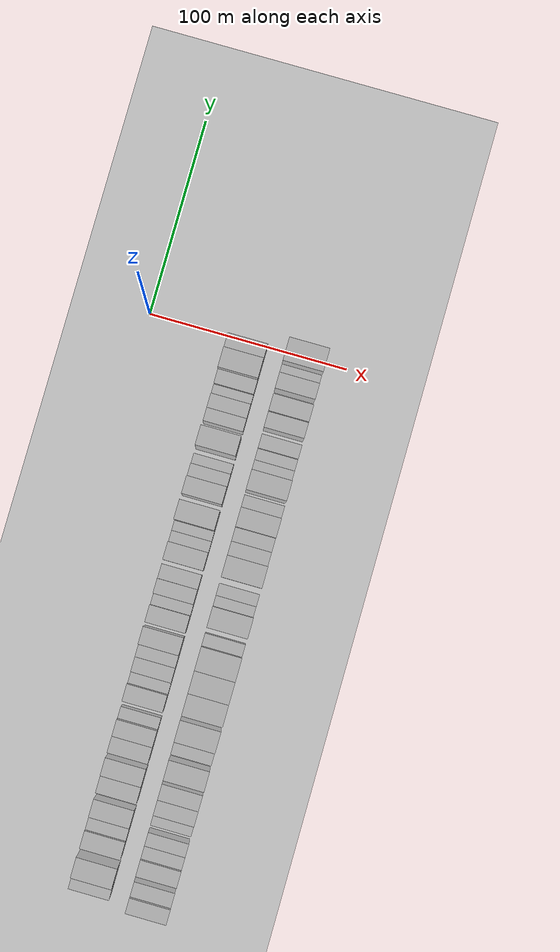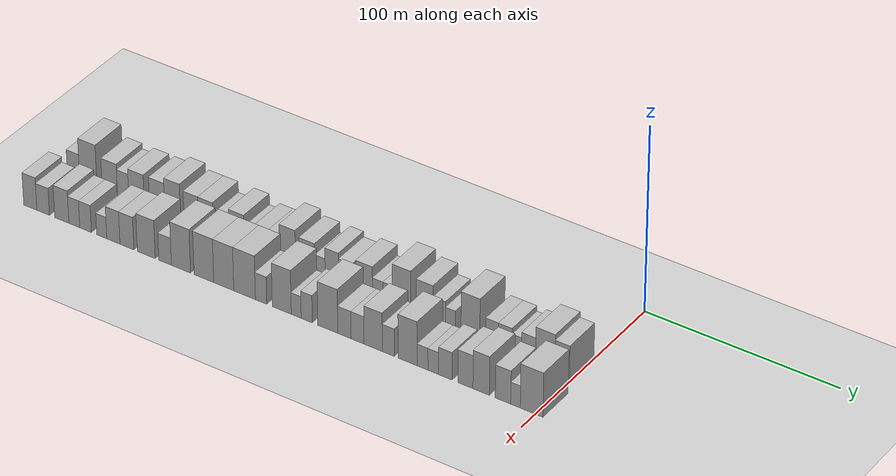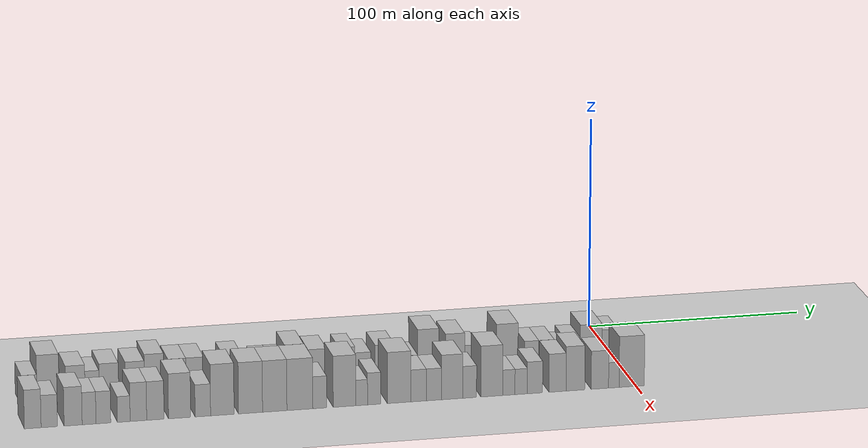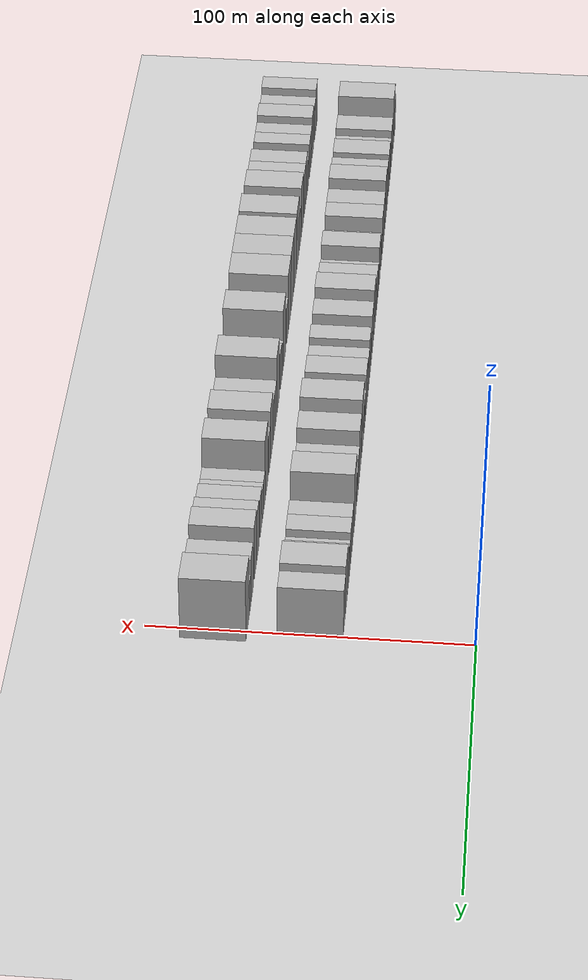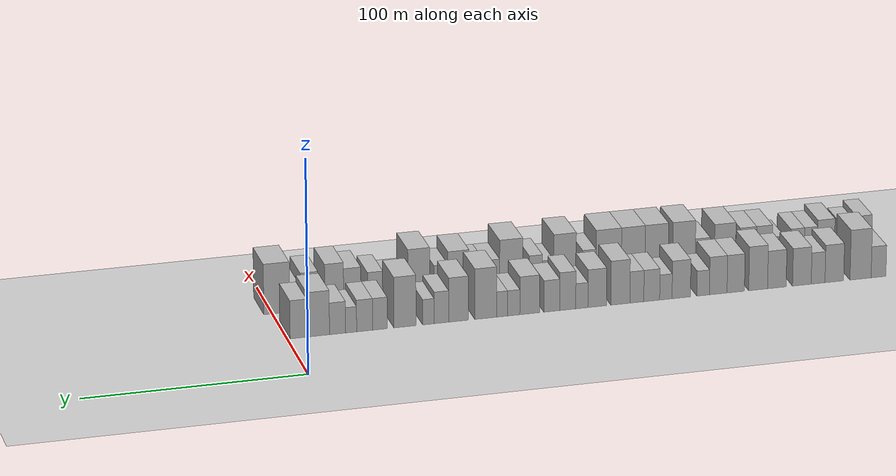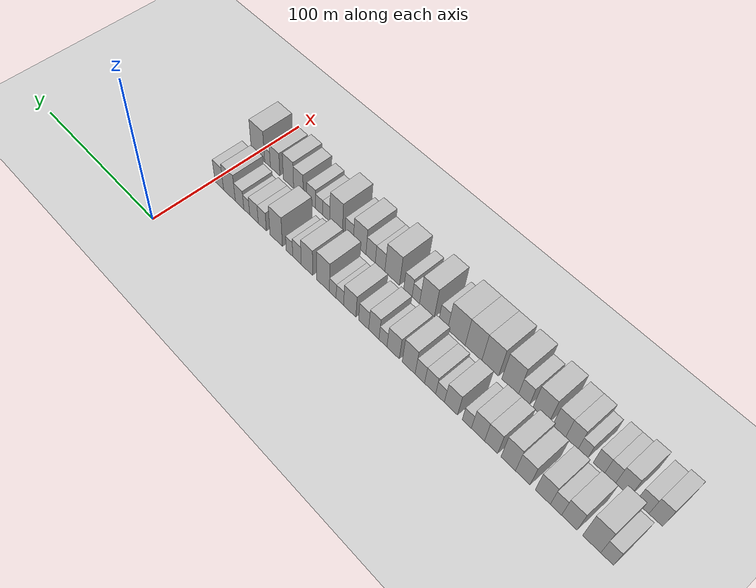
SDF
<sdf version="1.6">
 <world name="default">
  <include><name>ground_plane_1</name><uri>model://HANNAS_ground_plane</uri></include>
  <model name="building_1">
   <static>1</static>
   <pose>50.0000 -271.5159 0 0.000000 0.000000 0.000000</pose>
   <link name="link">
    <pose>0 0 7.50 0 0 0</pose>
    <collision name="collision"><geometry><box><size>20.0000 6.9682 15.0000</size></box></geometry></collision>
    <visual name="visual">
     <cast_shadows>0</cast_shadows>
     <geometry><box><size>20.0000 6.9682 15.0000</size></box></geometry>
     <material>
      <script>
       <uri>model://HANNAS_wall/materials/scripts</uri>
       <uri>model://HANNAS_wall/materials/textures</uri>
       <name>vrc/HANNAS_wall</name>
      </script>
     </material>
    </visual>
   </link>
  </model>
  <model name="building_2">
   <static>1</static>
   <pose>50.0000 -263.0658 0 0.000000 0.000000 0.000000</pose>
   <link name="link">
    <pose>0 0 12.00 0 0 0</pose>
    <collision name="collision"><geometry><box><size>20.0000 9.9319 24.0000</size></box></geometry></collision>
    <visual name="visual">
     <cast_shadows>0</cast_shadows>
     <geometry><box><size>20.0000 9.9319 24.0000</size></box></geometry>
     <material>
      <script>
       <uri>model://HANNAS_wall/materials/scripts</uri>
       <uri>model://HANNAS_wall/materials/textures</uri>
       <name>vrc/HANNAS_wall</name>
      </script>
     </material>
    </visual>
   </link>
  </model>
  <model name="building_3">
   <static>1</static>
   <pose>50.0000 -250.7267 0 0.000000 0.000000 0.000000</pose>
   <link name="link">
    <pose>0 0 9.00 0 0 0</pose>
    <collision name="collision"><geometry><box><size>20.0000 8.7463 18.0000</size></box></geometry></collision>
    <visual name="visual">
     <cast_shadows>0</cast_shadows>
     <geometry><box><size>20.0000 8.7463 18.0000</size></box></geometry>
     <material>
      <script>
       <uri>model://HANNAS_wall/materials/scripts</uri>
       <uri>model://HANNAS_wall/materials/textures</uri>
       <name>vrc/HANNAS_wall</name>
      </script>
     </material>
    </visual>
   </link>
  </model>
  <model name="building_4">
   <static>1</static>
   <pose>50.0000 -243.1369 0 0.000000 0.000000 0.000000</pose>
   <link name="link">
    <pose>0 0 7.50 0 0 0</pose>
    <collision name="collision"><geometry><box><size>20.0000 6.4332 15.0000</size></box></geometry></collision>
    <visual name="visual">
     <cast_shadows>0</cast_shadows>
     <geometry><box><size>20.0000 6.4332 15.0000</size></box></geometry>
     <material>
      <script>
       <uri>model://HANNAS_wall/materials/scripts</uri>
       <uri>model://HANNAS_wall/materials/textures</uri>
       <name>vrc/HANNAS_wall</name>
      </script>
     </material>
    </visual>
   </link>
  </model>
  <model name="building_5">
   <static>1</static>
   <pose>50.0000 -235.5371 0 0.000000 0.000000 0.000000</pose>
   <link name="link">
    <pose>0 0 9.00 0 0 0</pose>
    <collision name="collision"><geometry><box><size>20.0000 8.7665 18.0000</size></box></geometry></collision>
    <visual name="visual">
     <cast_shadows>0</cast_shadows>
     <geometry><box><size>20.0000 8.7665 18.0000</size></box></geometry>
     <material>
      <script>
       <uri>model://HANNAS_wall/materials/scripts</uri>
       <uri>model://HANNAS_wall/materials/textures</uri>
       <name>vrc/HANNAS_wall</name>
      </script>
     </material>
    </visual>
   </link>
  </model>
  <model name="building_6">
   <static>1</static>
   <pose>50.0000 -223.8168 0 0.000000 0.000000 0.000000</pose>
   <link name="link">
    <pose>0 0 9.00 0 0 0</pose>
    <collision name="collision"><geometry><box><size>20.0000 8.6742 18.0000</size></box></geometry></collision>
    <visual name="visual">
     <cast_shadows>0</cast_shadows>
     <geometry><box><size>20.0000 8.6742 18.0000</size></box></geometry>
     <material>
      <script>
       <uri>model://HANNAS_wall/materials/scripts</uri>
       <uri>model://HANNAS_wall/materials/textures</uri>
       <name>vrc/HANNAS_wall</name>
      </script>
     </material>
    </visual>
   </link>
  </model>
  <model name="building_7">
   <static>1</static>
   <pose>50.0000 -215.0911 0 0.000000 0.000000 0.000000</pose>
   <link name="link">
    <pose>0 0 10.50 0 0 0</pose>
    <collision name="collision"><geometry><box><size>20.0000 8.7772 21.0000</size></box></geometry></collision>
    <visual name="visual">
     <cast_shadows>0</cast_shadows>
     <geometry><box><size>20.0000 8.7772 21.0000</size></box></geometry>
     <material>
      <script>
       <uri>model://HANNAS_wall/materials/scripts</uri>
       <uri>model://HANNAS_wall/materials/textures</uri>
       <name>vrc/HANNAS_wall</name>
      </script>
     </material>
    </visual>
   </link>
  </model>
  <model name="building_8">
   <static>1</static>
   <pose>50.0000 -204.6598 0 0.000000 0.000000 0.000000</pose>
   <link name="link">
    <pose>0 0 9.00 0 0 0</pose>
    <collision name="collision"><geometry><box><size>20.0000 8.0854 18.0000</size></box></geometry></collision>
    <visual name="visual">
     <cast_shadows>0</cast_shadows>
     <geometry><box><size>20.0000 8.0854 18.0000</size></box></geometry>
     <material>
      <script>
       <uri>model://HANNAS_wall/materials/scripts</uri>
       <uri>model://HANNAS_wall/materials/textures</uri>
       <name>vrc/HANNAS_wall</name>
      </script>
     </material>
    </visual>
   </link>
  </model>
  <model name="building_9">
   <static>1</static>
   <pose>50.0000 -196.5052 0 0.000000 0.000000 0.000000</pose>
   <link name="link">
    <pose>0 0 9.00 0 0 0</pose>
    <collision name="collision"><geometry><box><size>20.0000 8.2237 18.0000</size></box></geometry></collision>
    <visual name="visual">
     <cast_shadows>0</cast_shadows>
     <geometry><box><size>20.0000 8.2237 18.0000</size></box></geometry>
     <material>
      <script>
       <uri>model://HANNAS_wall/materials/scripts</uri>
       <uri>model://HANNAS_wall/materials/textures</uri>
       <name>vrc/HANNAS_wall</name>
      </script>
     </material>
    </visual>
   </link>
  </model>
  <model name="building_10">
   <static>1</static>
   <pose>50.0000 -189.5027 0 0.000000 0.000000 0.000000</pose>
   <link name="link">
    <pose>0 0 6.00 0 0 0</pose>
    <collision name="collision"><geometry><box><size>20.0000 5.7813 12.0000</size></box></geometry></collision>
    <visual name="visual">
     <cast_shadows>0</cast_shadows>
     <geometry><box><size>20.0000 5.7813 12.0000</size></box></geometry>
     <material>
      <script>
       <uri>model://HANNAS_wall/materials/scripts</uri>
       <uri>model://HANNAS_wall/materials/textures</uri>
       <name>vrc/HANNAS_wall</name>
      </script>
     </material>
    </visual>
   </link>
  </model>
  <model name="building_11">
   <static>1</static>
   <pose>50.0000 -179.3486 0 0.000000 0.000000 0.000000</pose>
   <link name="link">
    <pose>0 0 9.00 0 0 0</pose>
    <collision name="collision"><geometry><box><size>20.0000 8.5268 18.0000</size></box></geometry></collision>
    <visual name="visual">
     <cast_shadows>0</cast_shadows>
     <geometry><box><size>20.0000 8.5268 18.0000</size></box></geometry>
     <material>
      <script>
       <uri>model://HANNAS_wall/materials/scripts</uri>
       <uri>model://HANNAS_wall/materials/textures</uri>
       <name>vrc/HANNAS_wall</name>
      </script>
     </material>
    </visual>
   </link>
  </model>
  <model name="building_12">
   <static>1</static>
   <pose>50.0000 -172.2277 0 0.000000 0.000000 0.000000</pose>
   <link name="link">
    <pose>0 0 6.00 0 0 0</pose>
    <collision name="collision"><geometry><box><size>20.0000 5.7151 12.0000</size></box></geometry></collision>
    <visual name="visual">
     <cast_shadows>0</cast_shadows>
     <geometry><box><size>20.0000 5.7151 12.0000</size></box></geometry>
     <material>
      <script>
       <uri>model://HANNAS_wall/materials/scripts</uri>
       <uri>model://HANNAS_wall/materials/textures</uri>
       <name>vrc/HANNAS_wall</name>
      </script>
     </material>
    </visual>
   </link>
  </model>
  <model name="building_13">
   <static>1</static>
   <pose>50.0000 -165.6933 0 0.000000 0.000000 0.000000</pose>
   <link name="link">
    <pose>0 0 7.50 0 0 0</pose>
    <collision name="collision"><geometry><box><size>20.0000 7.3537 15.0000</size></box></geometry></collision>
    <visual name="visual">
     <cast_shadows>0</cast_shadows>
     <geometry><box><size>20.0000 7.3537 15.0000</size></box></geometry>
     <material>
      <script>
       <uri>model://HANNAS_wall/materials/scripts</uri>
       <uri>model://HANNAS_wall/materials/textures</uri>
       <name>vrc/HANNAS_wall</name>
      </script>
     </material>
    </visual>
   </link>
  </model>
  <model name="building_14">
   <static>1</static>
   <pose>50.0000 -158.8166 0 0.000000 0.000000 0.000000</pose>
   <link name="link">
    <pose>0 0 7.50 0 0 0</pose>
    <collision name="collision"><geometry><box><size>20.0000 6.3997 15.0000</size></box></geometry></collision>
    <visual name="visual">
     <cast_shadows>0</cast_shadows>
     <geometry><box><size>20.0000 6.3997 15.0000</size></box></geometry>
     <material>
      <script>
       <uri>model://HANNAS_wall/materials/scripts</uri>
       <uri>model://HANNAS_wall/materials/textures</uri>
       <name>vrc/HANNAS_wall</name>
      </script>
     </material>
    </visual>
   </link>
  </model>
  <model name="building_15">
   <static>1</static>
   <pose>50.0000 -151.2310 0 0.000000 0.000000 0.000000</pose>
   <link name="link">
    <pose>0 0 10.50 0 0 0</pose>
    <collision name="collision"><geometry><box><size>20.0000 8.7715 21.0000</size></box></geometry></collision>
    <visual name="visual">
     <cast_shadows>0</cast_shadows>
     <geometry><box><size>20.0000 8.7715 21.0000</size></box></geometry>
     <material>
      <script>
       <uri>model://HANNAS_wall/materials/scripts</uri>
       <uri>model://HANNAS_wall/materials/textures</uri>
       <name>vrc/HANNAS_wall</name>
      </script>
     </material>
    </visual>
   </link>
  </model>
  <model name="building_16">
   <static>1</static>
   <pose>50.0000 -140.5599 0 0.000000 0.000000 0.000000</pose>
   <link name="link">
    <pose>0 0 9.00 0 0 0</pose>
    <collision name="collision"><geometry><box><size>20.0000 8.5708 18.0000</size></box></geometry></collision>
    <visual name="visual">
     <cast_shadows>0</cast_shadows>
     <geometry><box><size>20.0000 8.5708 18.0000</size></box></geometry>
     <material>
      <script>
       <uri>model://HANNAS_wall/materials/scripts</uri>
       <uri>model://HANNAS_wall/materials/textures</uri>
       <name>vrc/HANNAS_wall</name>
      </script>
     </material>
    </visual>
   </link>
  </model>
  <model name="building_17">
   <static>1</static>
   <pose>50.0000 -133.4870 0 0.000000 0.000000 0.000000</pose>
   <link name="link">
    <pose>0 0 6.00 0 0 0</pose>
    <collision name="collision"><geometry><box><size>20.0000 5.5748 12.0000</size></box></geometry></collision>
    <visual name="visual">
     <cast_shadows>0</cast_shadows>
     <geometry><box><size>20.0000 5.5748 12.0000</size></box></geometry>
     <material>
      <script>
       <uri>model://HANNAS_wall/materials/scripts</uri>
       <uri>model://HANNAS_wall/materials/textures</uri>
       <name>vrc/HANNAS_wall</name>
      </script>
     </material>
    </visual>
   </link>
  </model>
  <model name="building_18">
   <static>1</static>
   <pose>50.0000 -127.0307 0 0.000000 0.000000 0.000000</pose>
   <link name="link">
    <pose>0 0 9.00 0 0 0</pose>
    <collision name="collision"><geometry><box><size>20.0000 7.3379 18.0000</size></box></geometry></collision>
    <visual name="visual">
     <cast_shadows>0</cast_shadows>
     <geometry><box><size>20.0000 7.3379 18.0000</size></box></geometry>
     <material>
      <script>
       <uri>model://HANNAS_wall/materials/scripts</uri>
       <uri>model://HANNAS_wall/materials/textures</uri>
       <name>vrc/HANNAS_wall</name>
      </script>
     </material>
    </visual>
   </link>
  </model>
  <model name="building_19">
   <static>1</static>
   <pose>50.0000 -119.7201 0 0.000000 0.000000 0.000000</pose>
   <link name="link">
    <pose>0 0 7.50 0 0 0</pose>
    <collision name="collision"><geometry><box><size>20.0000 7.2834 15.0000</size></box></geometry></collision>
    <visual name="visual">
     <cast_shadows>0</cast_shadows>
     <geometry><box><size>20.0000 7.2834 15.0000</size></box></geometry>
     <material>
      <script>
       <uri>model://HANNAS_wall/materials/scripts</uri>
       <uri>model://HANNAS_wall/materials/textures</uri>
       <name>vrc/HANNAS_wall</name>
      </script>
     </material>
    </visual>
   </link>
  </model>
  <model name="building_20">
   <static>1</static>
   <pose>50.0000 -109.5894 0 0.000000 0.000000 0.000000</pose>
   <link name="link">
    <pose>0 0 9.00 0 0 0</pose>
    <collision name="collision"><geometry><box><size>20.0000 8.9779 18.0000</size></box></geometry></collision>
    <visual name="visual">
     <cast_shadows>0</cast_shadows>
     <geometry><box><size>20.0000 8.9779 18.0000</size></box></geometry>
     <material>
      <script>
       <uri>model://HANNAS_wall/materials/scripts</uri>
       <uri>model://HANNAS_wall/materials/textures</uri>
       <name>vrc/HANNAS_wall</name>
      </script>
     </material>
    </visual>
   </link>
  </model>
  <model name="building_21">
   <static>1</static>
   <pose>50.0000 -102.2996 0 0.000000 0.000000 0.000000</pose>
   <link name="link">
    <pose>0 0 6.00 0 0 0</pose>
    <collision name="collision"><geometry><box><size>20.0000 5.6018 12.0000</size></box></geometry></collision>
    <visual name="visual">
     <cast_shadows>0</cast_shadows>
     <geometry><box><size>20.0000 5.6018 12.0000</size></box></geometry>
     <material>
      <script>
       <uri>model://HANNAS_wall/materials/scripts</uri>
       <uri>model://HANNAS_wall/materials/textures</uri>
       <name>vrc/HANNAS_wall</name>
      </script>
     </material>
    </visual>
   </link>
  </model>
  <model name="building_22">
   <static>1</static>
   <pose>50.0000 -96.9715 0 0.000000 0.000000 0.000000</pose>
   <link name="link">
    <pose>0 0 6.00 0 0 0</pose>
    <collision name="collision"><geometry><box><size>20.0000 5.0544 12.0000</size></box></geometry></collision>
    <visual name="visual">
     <cast_shadows>0</cast_shadows>
     <geometry><box><size>20.0000 5.0544 12.0000</size></box></geometry>
     <material>
      <script>
       <uri>model://HANNAS_wall/materials/scripts</uri>
       <uri>model://HANNAS_wall/materials/textures</uri>
       <name>vrc/HANNAS_wall</name>
      </script>
     </material>
    </visual>
   </link>
  </model>
  <model name="building_23">
   <static>1</static>
   <pose>50.0000 -89.5114 0 0.000000 0.000000 0.000000</pose>
   <link name="link">
    <pose>0 0 12.00 0 0 0</pose>
    <collision name="collision"><geometry><box><size>20.0000 9.8659 24.0000</size></box></geometry></collision>
    <visual name="visual">
     <cast_shadows>0</cast_shadows>
     <geometry><box><size>20.0000 9.8659 24.0000</size></box></geometry>
     <material>
      <script>
       <uri>model://HANNAS_wall/materials/scripts</uri>
       <uri>model://HANNAS_wall/materials/textures</uri>
       <name>vrc/HANNAS_wall</name>
      </script>
     </material>
    </visual>
   </link>
  </model>
  <model name="building_24">
   <static>1</static>
   <pose>50.0000 -77.1458 0 0.000000 0.000000 0.000000</pose>
   <link name="link">
    <pose>0 0 10.50 0 0 0</pose>
    <collision name="collision"><geometry><box><size>20.0000 8.8653 21.0000</size></box></geometry></collision>
    <visual name="visual">
     <cast_shadows>0</cast_shadows>
     <geometry><box><size>20.0000 8.8653 21.0000</size></box></geometry>
     <material>
      <script>
       <uri>model://HANNAS_wall/materials/scripts</uri>
       <uri>model://HANNAS_wall/materials/textures</uri>
       <name>vrc/HANNAS_wall</name>
      </script>
     </material>
    </visual>
   </link>
  </model>
  <model name="building_25">
   <static>1</static>
   <pose>50.0000 -69.4078 0 0.000000 0.000000 0.000000</pose>
   <link name="link">
    <pose>0 0 7.50 0 0 0</pose>
    <collision name="collision"><geometry><box><size>20.0000 6.6107 15.0000</size></box></geometry></collision>
    <visual name="visual">
     <cast_shadows>0</cast_shadows>
     <geometry><box><size>20.0000 6.6107 15.0000</size></box></geometry>
     <material>
      <script>
       <uri>model://HANNAS_wall/materials/scripts</uri>
       <uri>model://HANNAS_wall/materials/textures</uri>
       <name>vrc/HANNAS_wall</name>
      </script>
     </material>
    </visual>
   </link>
  </model>
  <model name="building_26">
   <static>1</static>
   <pose>50.0000 -63.4971 0 0.000000 0.000000 0.000000</pose>
   <link name="link">
    <pose>0 0 6.00 0 0 0</pose>
    <collision name="collision"><geometry><box><size>20.0000 5.2108 12.0000</size></box></geometry></collision>
    <visual name="visual">
     <cast_shadows>0</cast_shadows>
     <geometry><box><size>20.0000 5.2108 12.0000</size></box></geometry>
     <material>
      <script>
       <uri>model://HANNAS_wall/materials/scripts</uri>
       <uri>model://HANNAS_wall/materials/textures</uri>
       <name>vrc/HANNAS_wall</name>
      </script>
     </material>
    </visual>
   </link>
  </model>
  <model name="building_27">
   <static>1</static>
   <pose>50.0000 -52.8952 0 0.000000 0.000000 0.000000</pose>
   <link name="link">
    <pose>0 0 12.00 0 0 0</pose>
    <collision name="collision"><geometry><box><size>20.0000 9.9930 24.0000</size></box></geometry></collision>
    <visual name="visual">
     <cast_shadows>0</cast_shadows>
     <geometry><box><size>20.0000 9.9930 24.0000</size></box></geometry>
     <material>
      <script>
       <uri>model://HANNAS_wall/materials/scripts</uri>
       <uri>model://HANNAS_wall/materials/textures</uri>
       <name>vrc/HANNAS_wall</name>
      </script>
     </material>
    </visual>
   </link>
  </model>
  <model name="building_28">
   <static>1</static>
   <pose>50.0000 -41.5784 0 0.000000 0.000000 0.000000</pose>
   <link name="link">
    <pose>0 0 7.50 0 0 0</pose>
    <collision name="collision"><geometry><box><size>20.0000 6.6407 15.0000</size></box></geometry></collision>
    <visual name="visual">
     <cast_shadows>0</cast_shadows>
     <geometry><box><size>20.0000 6.6407 15.0000</size></box></geometry>
     <material>
      <script>
       <uri>model://HANNAS_wall/materials/scripts</uri>
       <uri>model://HANNAS_wall/materials/textures</uri>
       <name>vrc/HANNAS_wall</name>
      </script>
     </material>
    </visual>
   </link>
  </model>
  <model name="building_29">
   <static>1</static>
   <pose>50.0000 -34.6689 0 0.000000 0.000000 0.000000</pose>
   <link name="link">
    <pose>0 0 7.50 0 0 0</pose>
    <collision name="collision"><geometry><box><size>20.0000 7.1783 15.0000</size></box></geometry></collision>
    <visual name="visual">
     <cast_shadows>0</cast_shadows>
     <geometry><box><size>20.0000 7.1783 15.0000</size></box></geometry>
     <material>
      <script>
       <uri>model://HANNAS_wall/materials/scripts</uri>
       <uri>model://HANNAS_wall/materials/textures</uri>
       <name>vrc/HANNAS_wall</name>
      </script>
     </material>
    </visual>
   </link>
  </model>
  <model name="building_30">
   <static>1</static>
   <pose>50.0000 -28.6052 0 0.000000 0.000000 0.000000</pose>
   <link name="link">
    <pose>0 0 6.00 0 0 0</pose>
    <collision name="collision"><geometry><box><size>20.0000 4.9491 12.0000</size></box></geometry></collision>
    <visual name="visual">
     <cast_shadows>0</cast_shadows>
     <geometry><box><size>20.0000 4.9491 12.0000</size></box></geometry>
     <material>
      <script>
       <uri>model://HANNAS_wall/materials/scripts</uri>
       <uri>model://HANNAS_wall/materials/textures</uri>
       <name>vrc/HANNAS_wall</name>
      </script>
     </material>
    </visual>
   </link>
  </model>
  <model name="building_31">
   <static>1</static>
   <pose>50.0000 -22.5011 0 0.000000 0.000000 0.000000</pose>
   <link name="link">
    <pose>0 0 7.50 0 0 0</pose>
    <collision name="collision"><geometry><box><size>20.0000 7.2591 15.0000</size></box></geometry></collision>
    <visual name="visual">
     <cast_shadows>0</cast_shadows>
     <geometry><box><size>20.0000 7.2591 15.0000</size></box></geometry>
     <material>
      <script>
       <uri>model://HANNAS_wall/materials/scripts</uri>
       <uri>model://HANNAS_wall/materials/textures</uri>
       <name>vrc/HANNAS_wall</name>
      </script>
     </material>
    </visual>
   </link>
  </model>
  <model name="building_32">
   <static>1</static>
   <pose>50.0000 -13.8042 0 0.000000 0.000000 0.000000</pose>
   <link name="link">
    <pose>0 0 10.50 0 0 0</pose>
    <collision name="collision"><geometry><box><size>20.0000 10.1348 21.0000</size></box></geometry></collision>
    <visual name="visual">
     <cast_shadows>0</cast_shadows>
     <geometry><box><size>20.0000 10.1348 21.0000</size></box></geometry>
     <material>
      <script>
       <uri>model://HANNAS_wall/materials/scripts</uri>
       <uri>model://HANNAS_wall/materials/textures</uri>
       <name>vrc/HANNAS_wall</name>
      </script>
     </material>
    </visual>
   </link>
  </model>
  <model name="building_33">
   <static>1</static>
   <pose>50.0000 -4.9800 0 0.000000 0.000000 0.000000</pose>
   <link name="link">
    <pose>0 0 9.00 0 0 0</pose>
    <collision name="collision"><geometry><box><size>20.0000 7.5135 18.0000</size></box></geometry></collision>
    <visual name="visual">
     <cast_shadows>0</cast_shadows>
     <geometry><box><size>20.0000 7.5135 18.0000</size></box></geometry>
     <material>
      <script>
       <uri>model://HANNAS_wall/materials/scripts</uri>
       <uri>model://HANNAS_wall/materials/textures</uri>
       <name>vrc/HANNAS_wall</name>
      </script>
     </material>
    </visual>
   </link>
  </model>
  <model name="building_65">
   <static>1</static>
   <pose>79.0000 -274.2738 0 0.000000 0.000000 0.000000</pose>
   <link name="link">
    <pose>0 0 9.00 0 0 0</pose>
    <collision name="collision"><geometry><box><size>20.0000 7.4524 18.0000</size></box></geometry></collision>
    <visual name="visual">
     <cast_shadows>0</cast_shadows>
     <geometry><box><size>20.0000 7.4524 18.0000</size></box></geometry>
     <material>
      <script>
       <uri>model://HANNAS_wall/materials/scripts</uri>
       <uri>model://HANNAS_wall/materials/textures</uri>
       <name>vrc/HANNAS_wall</name>
      </script>
     </material>
    </visual>
   </link>
  </model>
  <model name="building_66">
   <static>1</static>
   <pose>79.0000 -266.9235 0 0.000000 0.000000 0.000000</pose>
   <link name="link">
    <pose>0 0 7.50 0 0 0</pose>
    <collision name="collision"><geometry><box><size>20.0000 7.2481 15.0000</size></box></geometry></collision>
    <visual name="visual">
     <cast_shadows>0</cast_shadows>
     <geometry><box><size>20.0000 7.2481 15.0000</size></box></geometry>
     <material>
      <script>
       <uri>model://HANNAS_wall/materials/scripts</uri>
       <uri>model://HANNAS_wall/materials/textures</uri>
       <name>vrc/HANNAS_wall</name>
      </script>
     </material>
    </visual>
   </link>
  </model>
  <model name="building_67">
   <static>1</static>
   <pose>79.0000 -256.2672 0 0.000000 0.000000 0.000000</pose>
   <link name="link">
    <pose>0 0 9.00 0 0 0</pose>
    <collision name="collision"><geometry><box><size>20.0000 8.0646 18.0000</size></box></geometry></collision>
    <visual name="visual">
     <cast_shadows>0</cast_shadows>
     <geometry><box><size>20.0000 8.0646 18.0000</size></box></geometry>
     <material>
      <script>
       <uri>model://HANNAS_wall/materials/scripts</uri>
       <uri>model://HANNAS_wall/materials/textures</uri>
       <name>vrc/HANNAS_wall</name>
      </script>
     </material>
    </visual>
   </link>
  </model>
  <model name="building_68">
   <static>1</static>
   <pose>79.0000 -249.1426 0 0.000000 0.000000 0.000000</pose>
   <link name="link">
    <pose>0 0 7.50 0 0 0</pose>
    <collision name="collision"><geometry><box><size>20.0000 6.1846 15.0000</size></box></geometry></collision>
    <visual name="visual">
     <cast_shadows>0</cast_shadows>
     <geometry><box><size>20.0000 6.1846 15.0000</size></box></geometry>
     <material>
      <script>
       <uri>model://HANNAS_wall/materials/scripts</uri>
       <uri>model://HANNAS_wall/materials/textures</uri>
       <name>vrc/HANNAS_wall</name>
      </script>
     </material>
    </visual>
   </link>
  </model>
  <model name="building_69">
   <static>1</static>
   <pose>79.0000 -242.7590 0 0.000000 0.000000 0.000000</pose>
   <link name="link">
    <pose>0 0 7.50 0 0 0</pose>
    <collision name="collision"><geometry><box><size>20.0000 6.5827 15.0000</size></box></geometry></collision>
    <visual name="visual">
     <cast_shadows>0</cast_shadows>
     <geometry><box><size>20.0000 6.5827 15.0000</size></box></geometry>
     <material>
      <script>
       <uri>model://HANNAS_wall/materials/scripts</uri>
       <uri>model://HANNAS_wall/materials/textures</uri>
       <name>vrc/HANNAS_wall</name>
      </script>
     </material>
    </visual>
   </link>
  </model>
  <model name="building_70">
   <static>1</static>
   <pose>79.0000 -233.6264 0 0.000000 0.000000 0.000000</pose>
   <link name="link">
    <pose>0 0 6.00 0 0 0</pose>
    <collision name="collision"><geometry><box><size>20.0000 5.6826 12.0000</size></box></geometry></collision>
    <visual name="visual">
     <cast_shadows>0</cast_shadows>
     <geometry><box><size>20.0000 5.6826 12.0000</size></box></geometry>
     <material>
      <script>
       <uri>model://HANNAS_wall/materials/scripts</uri>
       <uri>model://HANNAS_wall/materials/textures</uri>
       <name>vrc/HANNAS_wall</name>
      </script>
     </material>
    </visual>
   </link>
  </model>
  <model name="building_71">
   <static>1</static>
   <pose>79.0000 -227.0682 0 0.000000 0.000000 0.000000</pose>
   <link name="link">
    <pose>0 0 9.00 0 0 0</pose>
    <collision name="collision"><geometry><box><size>20.0000 7.4338 18.0000</size></box></geometry></collision>
    <visual name="visual">
     <cast_shadows>0</cast_shadows>
     <geometry><box><size>20.0000 7.4338 18.0000</size></box></geometry>
     <material>
      <script>
       <uri>model://HANNAS_wall/materials/scripts</uri>
       <uri>model://HANNAS_wall/materials/textures</uri>
       <name>vrc/HANNAS_wall</name>
      </script>
     </material>
    </visual>
   </link>
  </model>
  <model name="building_72">
   <static>1</static>
   <pose>79.0000 -219.4555 0 0.000000 0.000000 0.000000</pose>
   <link name="link">
    <pose>0 0 9.00 0 0 0</pose>
    <collision name="collision"><geometry><box><size>20.0000 7.7916 18.0000</size></box></geometry></collision>
    <visual name="visual">
     <cast_shadows>0</cast_shadows>
     <geometry><box><size>20.0000 7.7916 18.0000</size></box></geometry>
     <material>
      <script>
       <uri>model://HANNAS_wall/materials/scripts</uri>
       <uri>model://HANNAS_wall/materials/textures</uri>
       <name>vrc/HANNAS_wall</name>
      </script>
     </material>
    </visual>
   </link>
  </model>
  <model name="building_73">
   <static>1</static>
   <pose>79.0000 -208.5744 0 0.000000 0.000000 0.000000</pose>
   <link name="link">
    <pose>0 0 10.50 0 0 0</pose>
    <collision name="collision"><geometry><box><size>20.0000 9.9707 21.0000</size></box></geometry></collision>
    <visual name="visual">
     <cast_shadows>0</cast_shadows>
     <geometry><box><size>20.0000 9.9707 21.0000</size></box></geometry>
     <material>
      <script>
       <uri>model://HANNAS_wall/materials/scripts</uri>
       <uri>model://HANNAS_wall/materials/textures</uri>
       <name>vrc/HANNAS_wall</name>
      </script>
     </material>
    </visual>
   </link>
  </model>
  <model name="building_74">
   <static>1</static>
   <pose>79.0000 -198.1087 0 0.000000 0.000000 0.000000</pose>
   <link name="link">
    <pose>0 0 7.50 0 0 0</pose>
    <collision name="collision"><geometry><box><size>20.0000 6.9607 15.0000</size></box></geometry></collision>
    <visual name="visual">
     <cast_shadows>0</cast_shadows>
     <geometry><box><size>20.0000 6.9607 15.0000</size></box></geometry>
     <material>
      <script>
       <uri>model://HANNAS_wall/materials/scripts</uri>
       <uri>model://HANNAS_wall/materials/textures</uri>
       <name>vrc/HANNAS_wall</name>
      </script>
     </material>
    </visual>
   </link>
  </model>
  <model name="building_75">
   <static>1</static>
   <pose>79.0000 -189.3229 0 0.000000 0.000000 0.000000</pose>
   <link name="link">
    <pose>0 0 12.00 0 0 0</pose>
    <collision name="collision"><geometry><box><size>20.0000 10.6109 24.0000</size></box></geometry></collision>
    <visual name="visual">
     <cast_shadows>0</cast_shadows>
     <geometry><box><size>20.0000 10.6109 24.0000</size></box></geometry>
     <material>
      <script>
       <uri>model://HANNAS_wall/materials/scripts</uri>
       <uri>model://HANNAS_wall/materials/textures</uri>
       <name>vrc/HANNAS_wall</name>
      </script>
     </material>
    </visual>
   </link>
  </model>
  <model name="building_76">
   <static>1</static>
   <pose>79.0000 -176.5898 0 0.000000 0.000000 0.000000</pose>
   <link name="link">
    <pose>0 0 12.00 0 0 0</pose>
    <collision name="collision"><geometry><box><size>20.0000 10.8552 24.0000</size></box></geometry></collision>
    <visual name="visual">
     <cast_shadows>0</cast_shadows>
     <geometry><box><size>20.0000 10.8552 24.0000</size></box></geometry>
     <material>
      <script>
       <uri>model://HANNAS_wall/materials/scripts</uri>
       <uri>model://HANNAS_wall/materials/textures</uri>
       <name>vrc/HANNAS_wall</name>
      </script>
     </material>
    </visual>
   </link>
  </model>
  <model name="building_77">
   <static>1</static>
   <pose>79.0000 -165.6441 0 0.000000 0.000000 0.000000</pose>
   <link name="link">
    <pose>0 0 12.00 0 0 0</pose>
    <collision name="collision"><geometry><box><size>20.0000 11.0362 24.0000</size></box></geometry></collision>
    <visual name="visual">
     <cast_shadows>0</cast_shadows>
     <geometry><box><size>20.0000 11.0362 24.0000</size></box></geometry>
     <material>
      <script>
       <uri>model://HANNAS_wall/materials/scripts</uri>
       <uri>model://HANNAS_wall/materials/textures</uri>
       <name>vrc/HANNAS_wall</name>
      </script>
     </material>
    </visual>
   </link>
  </model>
  <model name="building_78">
   <static>1</static>
   <pose>79.0000 -154.2432 0 0.000000 0.000000 0.000000</pose>
   <link name="link">
    <pose>0 0 12.00 0 0 0</pose>
    <collision name="collision"><geometry><box><size>20.0000 11.7656 24.0000</size></box></geometry></collision>
    <visual name="visual">
     <cast_shadows>0</cast_shadows>
     <geometry><box><size>20.0000 11.7656 24.0000</size></box></geometry>
     <material>
      <script>
       <uri>model://HANNAS_wall/materials/scripts</uri>
       <uri>model://HANNAS_wall/materials/textures</uri>
       <name>vrc/HANNAS_wall</name>
      </script>
     </material>
    </visual>
   </link>
  </model>
  <model name="building_79">
   <static>1</static>
   <pose>79.0000 -145.2386 0 0.000000 0.000000 0.000000</pose>
   <link name="link">
    <pose>0 0 7.50 0 0 0</pose>
    <collision name="collision"><geometry><box><size>20.0000 6.2436 15.0000</size></box></geometry></collision>
    <visual name="visual">
     <cast_shadows>0</cast_shadows>
     <geometry><box><size>20.0000 6.2436 15.0000</size></box></geometry>
     <material>
      <script>
       <uri>model://HANNAS_wall/materials/scripts</uri>
       <uri>model://HANNAS_wall/materials/textures</uri>
       <name>vrc/HANNAS_wall</name>
      </script>
     </material>
    </visual>
   </link>
  </model>
  <model name="building_80">
   <static>1</static>
   <pose>79.0000 -133.9576 0 0.000000 0.000000 0.000000</pose>
   <link name="link">
    <pose>0 0 12.00 0 0 0</pose>
    <collision name="collision"><geometry><box><size>20.0000 10.3185 24.0000</size></box></geometry></collision>
    <visual name="visual">
     <cast_shadows>0</cast_shadows>
     <geometry><box><size>20.0000 10.3185 24.0000</size></box></geometry>
     <material>
      <script>
       <uri>model://HANNAS_wall/materials/scripts</uri>
       <uri>model://HANNAS_wall/materials/textures</uri>
       <name>vrc/HANNAS_wall</name>
      </script>
     </material>
    </visual>
   </link>
  </model>
  <model name="building_81">
   <static>1</static>
   <pose>79.0000 -126.1521 0 0.000000 0.000000 0.000000</pose>
   <link name="link">
    <pose>0 0 6.00 0 0 0</pose>
    <collision name="collision"><geometry><box><size>20.0000 5.2923 12.0000</size></box></geometry></collision>
    <visual name="visual">
     <cast_shadows>0</cast_shadows>
     <geometry><box><size>20.0000 5.2923 12.0000</size></box></geometry>
     <material>
      <script>
       <uri>model://HANNAS_wall/materials/scripts</uri>
       <uri>model://HANNAS_wall/materials/textures</uri>
       <name>vrc/HANNAS_wall</name>
      </script>
     </material>
    </visual>
   </link>
  </model>
  <model name="building_82">
   <static>1</static>
   <pose>79.0000 -120.4873 0 0.000000 0.000000 0.000000</pose>
   <link name="link">
    <pose>0 0 7.50 0 0 0</pose>
    <collision name="collision"><geometry><box><size>20.0000 6.0373 15.0000</size></box></geometry></collision>
    <visual name="visual">
     <cast_shadows>0</cast_shadows>
     <geometry><box><size>20.0000 6.0373 15.0000</size></box></geometry>
     <material>
      <script>
       <uri>model://HANNAS_wall/materials/scripts</uri>
       <uri>model://HANNAS_wall/materials/textures</uri>
       <name>vrc/HANNAS_wall</name>
      </script>
     </material>
    </visual>
   </link>
  </model>
  <model name="building_83">
   <static>1</static>
   <pose>79.0000 -109.1049 0 0.000000 0.000000 0.000000</pose>
   <link name="link">
    <pose>0 0 12.00 0 0 0</pose>
    <collision name="collision"><geometry><box><size>20.0000 10.7276 24.0000</size></box></geometry></collision>
    <visual name="visual">
     <cast_shadows>0</cast_shadows>
     <geometry><box><size>20.0000 10.7276 24.0000</size></box></geometry>
     <material>
      <script>
       <uri>model://HANNAS_wall/materials/scripts</uri>
       <uri>model://HANNAS_wall/materials/textures</uri>
       <name>vrc/HANNAS_wall</name>
      </script>
     </material>
    </visual>
   </link>
  </model>
  <model name="building_84">
   <static>1</static>
   <pose>79.0000 -100.1925 0 0.000000 0.000000 0.000000</pose>
   <link name="link">
    <pose>0 0 7.50 0 0 0</pose>
    <collision name="collision"><geometry><box><size>20.0000 7.0971 15.0000</size></box></geometry></collision>
    <visual name="visual">
     <cast_shadows>0</cast_shadows>
     <geometry><box><size>20.0000 7.0971 15.0000</size></box></geometry>
     <material>
      <script>
       <uri>model://HANNAS_wall/materials/scripts</uri>
       <uri>model://HANNAS_wall/materials/textures</uri>
       <name>vrc/HANNAS_wall</name>
      </script>
     </material>
    </visual>
   </link>
  </model>
  <model name="building_85">
   <static>1</static>
   <pose>79.0000 -93.1695 0 0.000000 0.000000 0.000000</pose>
   <link name="link">
    <pose>0 0 7.50 0 0 0</pose>
    <collision name="collision"><geometry><box><size>20.0000 6.9489 15.0000</size></box></geometry></collision>
    <visual name="visual">
     <cast_shadows>0</cast_shadows>
     <geometry><box><size>20.0000 6.9489 15.0000</size></box></geometry>
     <material>
      <script>
       <uri>model://HANNAS_wall/materials/scripts</uri>
       <uri>model://HANNAS_wall/materials/textures</uri>
       <name>vrc/HANNAS_wall</name>
      </script>
     </material>
    </visual>
   </link>
  </model>
  <model name="building_86">
   <static>1</static>
   <pose>79.0000 -84.8528 0 0.000000 0.000000 0.000000</pose>
   <link name="link">
    <pose>0 0 10.50 0 0 0</pose>
    <collision name="collision"><geometry><box><size>20.0000 9.6846 21.0000</size></box></geometry></collision>
    <visual name="visual">
     <cast_shadows>0</cast_shadows>
     <geometry><box><size>20.0000 9.6846 21.0000</size></box></geometry>
     <material>
      <script>
       <uri>model://HANNAS_wall/materials/scripts</uri>
       <uri>model://HANNAS_wall/materials/textures</uri>
       <name>vrc/HANNAS_wall</name>
      </script>
     </material>
    </visual>
   </link>
  </model>
  <model name="building_87">
   <static>1</static>
   <pose>79.0000 -76.8187 0 0.000000 0.000000 0.000000</pose>
   <link name="link">
    <pose>0 0 7.50 0 0 0</pose>
    <collision name="collision"><geometry><box><size>20.0000 6.3835 15.0000</size></box></geometry></collision>
    <visual name="visual">
     <cast_shadows>0</cast_shadows>
     <geometry><box><size>20.0000 6.3835 15.0000</size></box></geometry>
     <material>
      <script>
       <uri>model://HANNAS_wall/materials/scripts</uri>
       <uri>model://HANNAS_wall/materials/textures</uri>
       <name>vrc/HANNAS_wall</name>
      </script>
     </material>
    </visual>
   </link>
  </model>
  <model name="building_88">
   <static>1</static>
   <pose>79.0000 -66.6269 0 0.000000 0.000000 0.000000</pose>
   <link name="link">
    <pose>0 0 12.00 0 0 0</pose>
    <collision name="collision"><geometry><box><size>20.0000 10.0001 24.0000</size></box></geometry></collision>
    <visual name="visual">
     <cast_shadows>0</cast_shadows>
     <geometry><box><size>20.0000 10.0001 24.0000</size></box></geometry>
     <material>
      <script>
       <uri>model://HANNAS_wall/materials/scripts</uri>
       <uri>model://HANNAS_wall/materials/textures</uri>
       <name>vrc/HANNAS_wall</name>
      </script>
     </material>
    </visual>
   </link>
  </model>
  <model name="building_89">
   <static>1</static>
   <pose>79.0000 -58.7938 0 0.000000 0.000000 0.000000</pose>
   <link name="link">
    <pose>0 0 6.00 0 0 0</pose>
    <collision name="collision"><geometry><box><size>20.0000 5.6661 12.0000</size></box></geometry></collision>
    <visual name="visual">
     <cast_shadows>0</cast_shadows>
     <geometry><box><size>20.0000 5.6661 12.0000</size></box></geometry>
     <material>
      <script>
       <uri>model://HANNAS_wall/materials/scripts</uri>
       <uri>model://HANNAS_wall/materials/textures</uri>
       <name>vrc/HANNAS_wall</name>
      </script>
     </material>
    </visual>
   </link>
  </model>
  <model name="building_90">
   <static>1</static>
   <pose>79.0000 -53.1214 0 0.000000 0.000000 0.000000</pose>
   <link name="link">
    <pose>0 0 6.00 0 0 0</pose>
    <collision name="collision"><geometry><box><size>20.0000 5.6786 12.0000</size></box></geometry></collision>
    <visual name="visual">
     <cast_shadows>0</cast_shadows>
     <geometry><box><size>20.0000 5.6786 12.0000</size></box></geometry>
     <material>
      <script>
       <uri>model://HANNAS_wall/materials/scripts</uri>
       <uri>model://HANNAS_wall/materials/textures</uri>
       <name>vrc/HANNAS_wall</name>
      </script>
     </material>
    </visual>
   </link>
  </model>
  <model name="building_91">
   <static>1</static>
   <pose>79.0000 -46.7652 0 0.000000 0.000000 0.000000</pose>
   <link name="link">
    <pose>0 0 7.50 0 0 0</pose>
    <collision name="collision"><geometry><box><size>20.0000 7.0340 15.0000</size></box></geometry></collision>
    <visual name="visual">
     <cast_shadows>0</cast_shadows>
     <geometry><box><size>20.0000 7.0340 15.0000</size></box></geometry>
     <material>
      <script>
       <uri>model://HANNAS_wall/materials/scripts</uri>
       <uri>model://HANNAS_wall/materials/textures</uri>
       <name>vrc/HANNAS_wall</name>
      </script>
     </material>
    </visual>
   </link>
  </model>
  <model name="building_92">
   <static>1</static>
   <pose>79.0000 -36.2999 0 0.000000 0.000000 0.000000</pose>
   <link name="link">
    <pose>0 0 9.00 0 0 0</pose>
    <collision name="collision"><geometry><box><size>20.0000 7.8967 18.0000</size></box></geometry></collision>
    <visual name="visual">
     <cast_shadows>0</cast_shadows>
     <geometry><box><size>20.0000 7.8967 18.0000</size></box></geometry>
     <material>
      <script>
       <uri>model://HANNAS_wall/materials/scripts</uri>
       <uri>model://HANNAS_wall/materials/textures</uri>
       <name>vrc/HANNAS_wall</name>
      </script>
     </material>
    </visual>
   </link>
  </model>
  <model name="building_93">
   <static>1</static>
   <pose>79.0000 -28.0609 0 0.000000 0.000000 0.000000</pose>
   <link name="link">
    <pose>0 0 10.50 0 0 0</pose>
    <collision name="collision"><geometry><box><size>20.0000 8.5813 21.0000</size></box></geometry></collision>
    <visual name="visual">
     <cast_shadows>0</cast_shadows>
     <geometry><box><size>20.0000 8.5813 21.0000</size></box></geometry>
     <material>
      <script>
       <uri>model://HANNAS_wall/materials/scripts</uri>
       <uri>model://HANNAS_wall/materials/textures</uri>
       <name>vrc/HANNAS_wall</name>
      </script>
     </material>
    </visual>
   </link>
  </model>
  <model name="building_94">
   <static>1</static>
   <pose>79.0000 -16.7516 0 0.000000 0.000000 0.000000</pose>
   <link name="link">
    <pose>0 0 9.00 0 0 0</pose>
    <collision name="collision"><geometry><box><size>20.0000 8.0373 18.0000</size></box></geometry></collision>
    <visual name="visual">
     <cast_shadows>0</cast_shadows>
     <geometry><box><size>20.0000 8.0373 18.0000</size></box></geometry>
     <material>
      <script>
       <uri>model://HANNAS_wall/materials/scripts</uri>
       <uri>model://HANNAS_wall/materials/textures</uri>
       <name>vrc/HANNAS_wall</name>
      </script>
     </material>
    </visual>
   </link>
  </model>
  <model name="building_95">
   <static>1</static>
   <pose>79.0000 -10.2767 0 0.000000 0.000000 0.000000</pose>
   <link name="link">
    <pose>0 0 6.00 0 0 0</pose>
    <collision name="collision"><geometry><box><size>20.0000 4.9126 12.0000</size></box></geometry></collision>
    <visual name="visual">
     <cast_shadows>0</cast_shadows>
     <geometry><box><size>20.0000 4.9126 12.0000</size></box></geometry>
     <material>
      <script>
       <uri>model://HANNAS_wall/materials/scripts</uri>
       <uri>model://HANNAS_wall/materials/textures</uri>
       <name>vrc/HANNAS_wall</name>
      </script>
     </material>
    </visual>
   </link>
  </model>
  <model name="building_96">
   <static>1</static>
   <pose>79.0000 -1.9791 0 0.000000 0.000000 0.000000</pose>
   <link name="link">
    <pose>0 0 12.00 0 0 0</pose>
    <collision name="collision"><geometry><box><size>20.0000 11.6826 24.0000</size></box></geometry></collision>
    <visual name="visual">
     <cast_shadows>0</cast_shadows>
     <geometry><box><size>20.0000 11.6826 24.0000</size></box></geometry>
     <material>
      <script>
       <uri>model://HANNAS_wall/materials/scripts</uri>
       <uri>model://HANNAS_wall/materials/textures</uri>
       <name>vrc/HANNAS_wall</name>
      </script>
     </material>
    </visual>
   </link>
  </model>
 </world>
</sdf>
